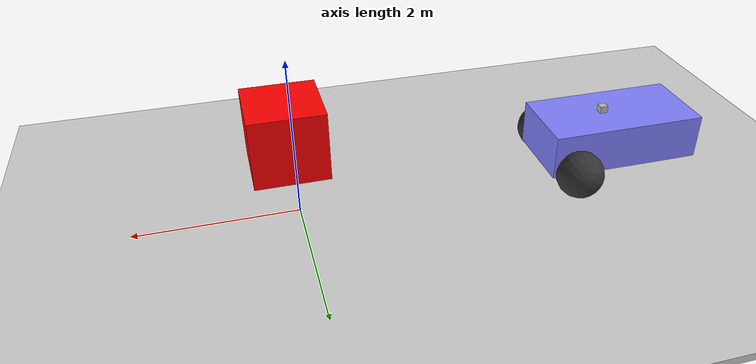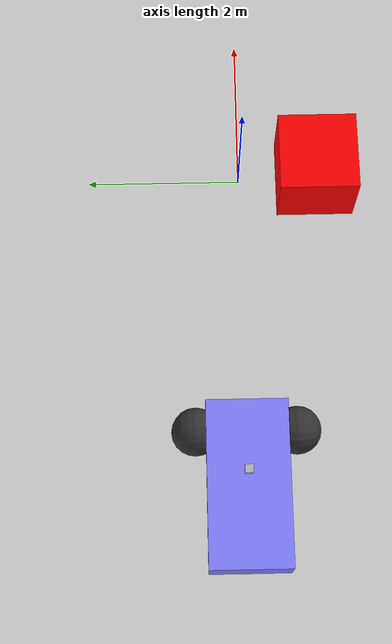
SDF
<sdf version="1.6">
 <world name="demo">
  <physics name="1ms" type="ignored">
   <max_step_size>0.001</max_step_size>
   <real_time_factor>1.0</real_time_factor>
  </physics>
  <plugin filename="libignition-gazebo-physics-system.so" name="ignition::gazebo::systems::Physics"/>
  <plugin filename="libignition-gazebo-sensors-system.so" name="ignition::gazebo::systems::Sensors">
   <render_engine>ogre2</render_engine>
  </plugin>
  <plugin filename="libignition-gazebo-scene-broadcaster-system.so" name="ignition::gazebo::systems::SceneBroadcaster"/>
  <plugin filename="ignition-gazebo-user-commands-system" name="ignition::gazebo::systems::UserCommands"/>
  <light type="directional" name="sun">
   <pose>0 0 10 0 0 0</pose>
   <diffuse>0.8 0.8 0.8 1</diffuse>
   <specular>0.2 0.2 0.2 1</specular>
   <attenuation>
    <range>1000</range>
    <constant>0.9</constant>
    <linear>0.01</linear>
    <quadratic>0.001</quadratic>
   </attenuation>
   <direction>-0.5 0.1 -0.9</direction>
  </light>
  <model name="ground_plane">
   <static>true</static>
   <link name="link">
    <collision name="collision"><geometry><box><size>20 20 0.1</size></box></geometry></collision>
    <visual name="visual">
     <geometry><box><size>20 20 0.1</size></box></geometry>
     <material>
      <ambient>0.8 0.8 0.8 1</ambient>
      <diffuse>0.8 0.8 0.8 1</diffuse>
      <specular>0.8 0.8 0.8 1</specular>
     </material>
    </visual>
   </link>
  </model>
  <model name="box">
   <pose>0 -1 0.5 0 0 0</pose>
   <link name="box_link">
    <inertial>
     <inertia><ixx>1</ixx><ixy>0</ixy><ixz>0</ixz><iyy>1</iyy><iyz>0</iyz><izz>1</izz></inertia>
     <mass>1.0</mass>
    </inertial>
    <collision name="box_collision"><geometry><box><size>1 1 1</size></box></geometry></collision>
    <visual name="box_visual">
     <geometry><box><size>1 1 1</size></box></geometry>
     <material><ambient>1 0 0 1</ambient><diffuse>1 0 0 1</diffuse><specular>1 0 0 1</specular></material>
    </visual>
   </link>
  </model>
  <model name="vehicle_blue">
   <pose>-4 0 0.325 0 0 0.0</pose>
   <link name="chassis">
    <pose>-0.151427 -0 0.175 0 -0 0</pose>
    <inertial>
     <mass>1.14395</mass>
     <inertia>
      <ixx>0.126164</ixx>
      <ixy>0</ixy>
      <ixz>0</ixz>
      <iyy>0.416519</iyy>
      <iyz>0</iyz>
      <izz>0.481014</izz>
     </inertia>
    </inertial>
    <visual name="visual">
     <geometry><box><size>2.01142 1 0.568726</size></box></geometry>
     <material>
      <ambient>0.5 0.5 1.0 1</ambient>
      <diffuse>0.5 0.5 1.0 1</diffuse>
      <specular>0.0 0.0 1.0 1</specular>
     </material>
    </visual>
    <collision name="collision"><geometry><box><size>2.01142 1 0.568726</size></box></geometry></collision>
   </link>
   <link name="lidar_link">
    <pose>0 0 0.5 0 0 0</pose>
    <inertial>
     <mass>0.1</mass>
     <inertia><ixx>0.000166667</ixx><iyy>0.000166667</iyy><izz>0.000166667</izz></inertia>
    </inertial>
    <collision name="collision"><geometry><box><size>0.1 0.1 0.1</size></box></geometry></collision>
    <visual name="visual"><geometry><box><size>0.1 0.1 0.1</size></box></geometry></visual>
    <sensor name="gpu_lidar" type="gpu_lidar">
     <topic>lidar</topic>
     <update_rate>10</update_rate>
     <lidar>
      <scan>
       <horizontal>
        <samples>640</samples>
        <resolution>1</resolution>
        <min_angle>-1.396263</min_angle>
        <max_angle>1.396263</max_angle>
       </horizontal>
       <vertical>
        <samples>1</samples>
        <resolution>1</resolution>
        <min_angle>0.0</min_angle>
        <max_angle>0.0</max_angle>
       </vertical>
      </scan>
      <range><min>0.08</min><max>10.0</max><resolution>0.01</resolution></range>
     </lidar>
     <alwaysOn>1</alwaysOn>
     <visualize>true</visualize>
    </sensor>
   </link>
   <link name="left_wheel">
    <pose>0.554283 0.625029 -0.025 -1.5707 0 0</pose>
    <inertial>
     <mass>2</mass>
     <inertia><ixx>0.145833</ixx><ixy>0</ixy><ixz>0</ixz><iyy>0.145833</iyy><iyz>0</iyz><izz>0.125</izz></inertia>
    </inertial>
    <visual name="visual">
     <geometry><sphere><radius>0.3</radius></sphere></geometry>
     <material>
      <ambient>0.2 0.2 0.2 1</ambient>
      <diffuse>0.2 0.2 0.2 1</diffuse>
      <specular>0.2 0.2 0.2 1</specular>
     </material>
    </visual>
    <collision name="collision"><geometry><sphere><radius>0.3</radius></sphere></geometry></collision>
   </link>
   <link name="right_wheel">
    <pose>0.554282 -0.625029 -0.025 -1.5707 0 0</pose>
    <inertial>
     <mass>2</mass>
     <inertia><ixx>0.145833</ixx><ixy>0</ixy><ixz>0</ixz><iyy>0.145833</iyy><iyz>0</iyz><izz>0.125</izz></inertia>
    </inertial>
    <visual name="visual">
     <geometry><sphere><radius>0.3</radius></sphere></geometry>
     <material>
      <ambient>0.2 0.2 0.2 1</ambient>
      <diffuse>0.2 0.2 0.2 1</diffuse>
      <specular>0.2 0.2 0.2 1</specular>
     </material>
    </visual>
    <collision name="collision"><geometry><sphere><radius>0.3</radius></sphere></geometry></collision>
   </link>
   <link name="caster">
    <pose>-0.957138 -0 -0.125 0 -0 0</pose>
    <inertial>
     <mass>1</mass>
     <inertia><ixx>0.1</ixx><ixy>0</ixy><ixz>0</ixz><iyy>0.1</iyy><iyz>0</iyz><izz>0.1</izz></inertia>
    </inertial>
    <visual name="visual">
     <geometry><sphere><radius>0.2</radius></sphere></geometry>
     <material>
      <ambient>0.2 0.2 0.2 1</ambient>
      <diffuse>0.2 0.2 0.2 1</diffuse>
      <specular>0.2 0.2 0.2 1</specular>
     </material>
    </visual>
    <collision name="collision"><geometry><sphere><radius>0.2</radius></sphere></geometry></collision>
   </link>
   <joint name="lidar_sensor_joint" type="fixed"><parent>chassis</parent><child>lidar_link</child></joint>
   <joint name="left_wheel_joint" type="revolute">
    <parent>chassis</parent>
    <child>left_wheel</child>
    <axis><xyz>0 0 1</xyz><limit><lower>-1.79769e+308</lower><upper>1.79769e+308</upper></limit></axis>
   </joint>
   <joint name="right_wheel_joint" type="revolute">
    <parent>chassis</parent>
    <child>right_wheel</child>
    <axis><xyz>0 0 1</xyz><limit><lower>-1.79769e+308</lower><upper>1.79769e+308</upper></limit></axis>
   </joint>
   <joint name="caster_wheel" type="ball"><parent>chassis</parent><child>caster</child></joint>
   <plugin filename="libignition-gazebo-diff-drive-system.so" name="ignition::gazebo::systems::DiffDrive">
    <topic>cmd_vel</topic>
    <left_joint>left_wheel_joint</left_joint>
    <right_joint>right_wheel_joint</right_joint>
    <wheel_separation>1.25</wheel_separation>
    <wheel_radius>0.3</wheel_radius>
    <odom_publish_frequency>1</odom_publish_frequency>
   </plugin>
   <plugin filename="libignition-gazebo-triggered-publisher-system.so" name="ignition::gazebo::systems::TriggeredPublisher">
    <input type="ignition.msgs.Int32" topic="/keyboard/keypress"><match field="data">16777235</match></input>
    <output type="ignition.msgs.Twist" topic="/cmd_vel">linear: {x: 0.5}, angular: {z: 0.0}</output>
   </plugin>
   <plugin filename="libignition-gazebo-triggered-publisher-system.so" name="ignition::gazebo::systems::TriggeredPublisher">
    <input type="ignition.msgs.Int32" topic="/keyboard/keypress"><match field="data">16777237</match></input>
    <output type="ignition.msgs.Twist" topic="/cmd_vel">linear: {x: -0.5}, angular: {z: 0.0}</output>
   </plugin>
   <plugin filename="libignition-gazebo-triggered-publisher-system.so" name="ignition::gazebo::systems::TriggeredPublisher">
    <input type="ignition.msgs.Int32" topic="/keyboard/keypress"><match field="data">16777236</match></input>
    <output type="ignition.msgs.Twist" topic="/cmd_vel">linear: {x: 0.0}, angular: {z: -0.5}</output>
   </plugin>
   <plugin filename="libignition-gazebo-triggered-publisher-system.so" name="ignition::gazebo::systems::TriggeredPublisher">
    <input type="ignition.msgs.Int32" topic="/keyboard/keypress"><match field="data">16777234</match></input>
    <output type="ignition.msgs.Twist" topic="/cmd_vel">linear: {x: 0.0}, angular: {z: 0.5}</output>
   </plugin>
   <plugin filename="libignition-gazebo-triggered-publisher-system.so" name="ignition::gazebo::systems::TriggeredPublisher">
    <input type="ignition.msgs.Int32" topic="/keyboard/keypress"><match field="data">65</match></input>
    <output type="ignition.msgs.Twist" topic="/cmd_vel">linear: {x: 0.0}, angular: {z: 0.0}</output>
   </plugin>
  </model>
 </world>
</sdf>
